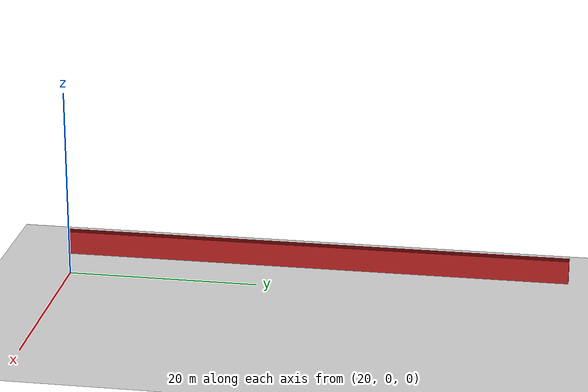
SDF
<sdf version="1.4">
 <world name="1_wall">
  <model name="ground_plane">
   <static>1</static>
   <link name="link">
    <collision name="collision">
     <geometry><plane><normal>0 0 1</normal><size>1000 1000</size></plane></geometry>
     <surface><friction><ode><mu>100</mu><mu2>50</mu2></ode></friction></surface>
    </collision>
    <visual name="visual">
     <cast_shadows>0</cast_shadows>
     <geometry><plane><normal>0 0 1</normal><size>10000 10000</size></plane></geometry>
     <material>
      <script><uri>file://media/materials/scripts/gazebo.material</uri><name>Gazebo/Grey</name></script>
     </material>
    </visual>
    <velocity_decay><linear>0</linear><angular>0</angular></velocity_decay>
   </link>
  </model>
  <model name="Wall_305">
   <static>1</static>
   <link name="Wall_305">
    <collision name="Wall_Collision_305">
     <geometry><box><size>53.65 0.05 2.5</size></box></geometry>
     <pose>0 0 1.25 0 -0 0</pose>
    </collision>
    <visual name="Wall_Visual_305">
     <pose>0 0 1.25 0 -0 0</pose>
     <geometry><box><size>53.65 0.05 2.5</size></box></geometry>
     <material>
      <script><uri>file://media/materials/scripts/gazebo.material</uri><name>Gazebo/Red</name></script>
     </material>
    </visual>
    <velocity_decay><linear>0</linear><angular>0</angular></velocity_decay>
    <pose>13.75 25.3 0 0 0 1.5707963267948966</pose>
   </link>
  </model>
  <model name="Wall_306">
   <static>1</static>
   <link name="Wall_306">
    <collision name="Wall_Collision_306">
     <geometry><box><size>53.65 0.05 2.5</size></box></geometry>
     <pose>0 0 1.25 0 -0 0</pose>
    </collision>
    <visual name="Wall_Visual_306">
     <pose>0 0 1.25 0 -0 0</pose>
     <geometry><box><size>53.65 0.05 2.5</size></box></geometry>
     <material>
      <script><uri>file://media/materials/scripts/gazebo.material</uri><name>Gazebo/Red</name></script>
     </material>
    </visual>
    <velocity_decay><linear>0</linear><angular>0</angular></velocity_decay>
    <pose>13.8 25.3 0 0 0 1.5707963267948966</pose>
   </link>
  </model>
  <model name="Wall_307">
   <static>1</static>
   <link name="Wall_307">
    <collision name="Wall_Collision_307">
     <geometry><box><size>53.65 0.05 2.5</size></box></geometry>
     <pose>0 0 1.25 0 -0 0</pose>
    </collision>
    <visual name="Wall_Visual_307">
     <pose>0 0 1.25 0 -0 0</pose>
     <geometry><box><size>53.65 0.05 2.5</size></box></geometry>
     <material>
      <script><uri>file://media/materials/scripts/gazebo.material</uri><name>Gazebo/Red</name></script>
     </material>
    </visual>
    <velocity_decay><linear>0</linear><angular>0</angular></velocity_decay>
    <pose>13.85 25.3 0 0 0 1.5707963267948966</pose>
   </link>
  </model>
  <model name="Wall_308">
   <static>1</static>
   <link name="Wall_308">
    <collision name="Wall_Collision_308">
     <geometry><box><size>53.65 0.05 2.5</size></box></geometry>
     <pose>0 0 1.25 0 -0 0</pose>
    </collision>
    <visual name="Wall_Visual_308">
     <pose>0 0 1.25 0 -0 0</pose>
     <geometry><box><size>53.65 0.05 2.5</size></box></geometry>
     <material>
      <script><uri>file://media/materials/scripts/gazebo.material</uri><name>Gazebo/Red</name></script>
     </material>
    </visual>
    <velocity_decay><linear>0</linear><angular>0</angular></velocity_decay>
    <pose>13.9 25.3 0 0 0 1.5707963267948966</pose>
   </link>
  </model>
  <model name="Wall_309">
   <static>1</static>
   <link name="Wall_309">
    <collision name="Wall_Collision_309">
     <geometry><box><size>53.65 0.05 2.5</size></box></geometry>
     <pose>0 0 1.25 0 -0 0</pose>
    </collision>
    <visual name="Wall_Visual_309">
     <pose>0 0 1.25 0 -0 0</pose>
     <geometry><box><size>53.65 0.05 2.5</size></box></geometry>
     <material>
      <script><uri>file://media/materials/scripts/gazebo.material</uri><name>Gazebo/Red</name></script>
     </material>
    </visual>
    <velocity_decay><linear>0</linear><angular>0</angular></velocity_decay>
    <pose>13.95 25.3 0 0 0 1.5707963267948966</pose>
   </link>
  </model>
  <model name="Wall_310">
   <static>1</static>
   <link name="Wall_310">
    <collision name="Wall_Collision_310">
     <geometry><box><size>53.65 0.05 2.5</size></box></geometry>
     <pose>0 0 1.25 0 -0 0</pose>
    </collision>
    <visual name="Wall_Visual_310">
     <pose>0 0 1.25 0 -0 0</pose>
     <geometry><box><size>53.65 0.05 2.5</size></box></geometry>
     <material>
      <script><uri>file://media/materials/scripts/gazebo.material</uri><name>Gazebo/Red</name></script>
     </material>
    </visual>
    <velocity_decay><linear>0</linear><angular>0</angular></velocity_decay>
    <pose>14.0 25.3 0 0 0 1.5707963267948966</pose>
   </link>
  </model>
  <model name="Wall_311">
   <static>1</static>
   <link name="Wall_311">
    <collision name="Wall_Collision_311">
     <geometry><box><size>53.65 0.05 2.5</size></box></geometry>
     <pose>0 0 1.25 0 -0 0</pose>
    </collision>
    <visual name="Wall_Visual_311">
     <pose>0 0 1.25 0 -0 0</pose>
     <geometry><box><size>53.65 0.05 2.5</size></box></geometry>
     <material>
      <script><uri>file://media/materials/scripts/gazebo.material</uri><name>Gazebo/Red</name></script>
     </material>
    </visual>
    <velocity_decay><linear>0</linear><angular>0</angular></velocity_decay>
    <pose>14.05 25.3 0 0 0 1.5707963267948966</pose>
   </link>
  </model>
  <model name="Wall_312">
   <static>1</static>
   <link name="Wall_312">
    <collision name="Wall_Collision_312">
     <geometry><box><size>53.65 0.05 2.5</size></box></geometry>
     <pose>0 0 1.25 0 -0 0</pose>
    </collision>
    <visual name="Wall_Visual_312">
     <pose>0 0 1.25 0 -0 0</pose>
     <geometry><box><size>53.65 0.05 2.5</size></box></geometry>
     <material>
      <script><uri>file://media/materials/scripts/gazebo.material</uri><name>Gazebo/Red</name></script>
     </material>
    </visual>
    <velocity_decay><linear>0</linear><angular>0</angular></velocity_decay>
    <pose>14.1 25.3 0 0 0 1.5707963267948966</pose>
   </link>
  </model>
  <model name="Wall_313">
   <static>1</static>
   <link name="Wall_313">
    <collision name="Wall_Collision_313">
     <geometry><box><size>53.65 0.05 2.5</size></box></geometry>
     <pose>0 0 1.25 0 -0 0</pose>
    </collision>
    <visual name="Wall_Visual_313">
     <pose>0 0 1.25 0 -0 0</pose>
     <geometry><box><size>53.65 0.05 2.5</size></box></geometry>
     <material>
      <script><uri>file://media/materials/scripts/gazebo.material</uri><name>Gazebo/Red</name></script>
     </material>
    </visual>
    <velocity_decay><linear>0</linear><angular>0</angular></velocity_decay>
    <pose>14.15 25.3 0 0 0 1.5707963267948966</pose>
   </link>
  </model>
  <model name="Wall_314">
   <static>1</static>
   <link name="Wall_314">
    <collision name="Wall_Collision_314">
     <geometry><box><size>53.65 0.05 2.5</size></box></geometry>
     <pose>0 0 1.25 0 -0 0</pose>
    </collision>
    <visual name="Wall_Visual_314">
     <pose>0 0 1.25 0 -0 0</pose>
     <geometry><box><size>53.65 0.05 2.5</size></box></geometry>
     <material>
      <script><uri>file://media/materials/scripts/gazebo.material</uri><name>Gazebo/Red</name></script>
     </material>
    </visual>
    <velocity_decay><linear>0</linear><angular>0</angular></velocity_decay>
    <pose>14.2 25.3 0 0 0 1.5707963267948966</pose>
   </link>
  </model>
  <model name="Wall_315">
   <static>1</static>
   <link name="Wall_315">
    <collision name="Wall_Collision_315">
     <geometry><box><size>53.65 0.05 2.5</size></box></geometry>
     <pose>0 0 1.25 0 -0 0</pose>
    </collision>
    <visual name="Wall_Visual_315">
     <pose>0 0 1.25 0 -0 0</pose>
     <geometry><box><size>53.65 0.05 2.5</size></box></geometry>
     <material>
      <script><uri>file://media/materials/scripts/gazebo.material</uri><name>Gazebo/Red</name></script>
     </material>
    </visual>
    <velocity_decay><linear>0</linear><angular>0</angular></velocity_decay>
    <pose>14.25 25.3 0 0 0 1.5707963267948966</pose>
   </link>
  </model>
  <model name="Wall_316">
   <static>1</static>
   <link name="Wall_316">
    <collision name="Wall_Collision_316">
     <geometry><box><size>53.65 0.05 2.5</size></box></geometry>
     <pose>0 0 1.25 0 -0 0</pose>
    </collision>
    <visual name="Wall_Visual_316">
     <pose>0 0 1.25 0 -0 0</pose>
     <geometry><box><size>53.65 0.05 2.5</size></box></geometry>
     <material>
      <script><uri>file://media/materials/scripts/gazebo.material</uri><name>Gazebo/Red</name></script>
     </material>
    </visual>
    <velocity_decay><linear>0</linear><angular>0</angular></velocity_decay>
    <pose>14.3 25.3 0 0 0 1.5707963267948966</pose>
   </link>
  </model>
  <model name="Wall_317">
   <static>1</static>
   <link name="Wall_317">
    <collision name="Wall_Collision_317">
     <geometry><box><size>53.65 0.05 2.5</size></box></geometry>
     <pose>0 0 1.25 0 -0 0</pose>
    </collision>
    <visual name="Wall_Visual_317">
     <pose>0 0 1.25 0 -0 0</pose>
     <geometry><box><size>53.65 0.05 2.5</size></box></geometry>
     <material>
      <script><uri>file://media/materials/scripts/gazebo.material</uri><name>Gazebo/Red</name></script>
     </material>
    </visual>
    <velocity_decay><linear>0</linear><angular>0</angular></velocity_decay>
    <pose>14.35 25.3 0 0 0 1.5707963267948966</pose>
   </link>
  </model>
  <model name="Wall_318">
   <static>1</static>
   <link name="Wall_318">
    <collision name="Wall_Collision_318">
     <geometry><box><size>53.65 0.05 2.5</size></box></geometry>
     <pose>0 0 1.25 0 -0 0</pose>
    </collision>
    <visual name="Wall_Visual_318">
     <pose>0 0 1.25 0 -0 0</pose>
     <geometry><box><size>53.65 0.05 2.5</size></box></geometry>
     <material>
      <script><uri>file://media/materials/scripts/gazebo.material</uri><name>Gazebo/Red</name></script>
     </material>
    </visual>
    <velocity_decay><linear>0</linear><angular>0</angular></velocity_decay>
    <pose>14.4 25.3 0 0 0 1.5707963267948966</pose>
   </link>
  </model>
  <model name="Wall_319">
   <static>1</static>
   <link name="Wall_319">
    <collision name="Wall_Collision_319">
     <geometry><box><size>53.65 0.05 2.5</size></box></geometry>
     <pose>0 0 1.25 0 -0 0</pose>
    </collision>
    <visual name="Wall_Visual_319">
     <pose>0 0 1.25 0 -0 0</pose>
     <geometry><box><size>53.65 0.05 2.5</size></box></geometry>
     <material>
      <script><uri>file://media/materials/scripts/gazebo.material</uri><name>Gazebo/Red</name></script>
     </material>
    </visual>
    <velocity_decay><linear>0</linear><angular>0</angular></velocity_decay>
    <pose>14.45 25.3 0 0 0 1.5707963267948966</pose>
   </link>
  </model>
  <model name="Wall_320">
   <static>1</static>
   <link name="Wall_320">
    <collision name="Wall_Collision_320">
     <geometry><box><size>53.65 0.05 2.5</size></box></geometry>
     <pose>0 0 1.25 0 -0 0</pose>
    </collision>
    <visual name="Wall_Visual_320">
     <pose>0 0 1.25 0 -0 0</pose>
     <geometry><box><size>53.65 0.05 2.5</size></box></geometry>
     <material>
      <script><uri>file://media/materials/scripts/gazebo.material</uri><name>Gazebo/Red</name></script>
     </material>
    </visual>
    <velocity_decay><linear>0</linear><angular>0</angular></velocity_decay>
    <pose>14.5 25.3 0 0 0 1.5707963267948966</pose>
   </link>
  </model>
  <model name="Wall_321">
   <static>1</static>
   <link name="Wall_321">
    <collision name="Wall_Collision_321">
     <geometry><box><size>53.65 0.05 2.5</size></box></geometry>
     <pose>0 0 1.25 0 -0 0</pose>
    </collision>
    <visual name="Wall_Visual_321">
     <pose>0 0 1.25 0 -0 0</pose>
     <geometry><box><size>53.65 0.05 2.5</size></box></geometry>
     <material>
      <script><uri>file://media/materials/scripts/gazebo.material</uri><name>Gazebo/Red</name></script>
     </material>
    </visual>
    <velocity_decay><linear>0</linear><angular>0</angular></velocity_decay>
    <pose>14.55 25.3 0 0 0 1.5707963267948966</pose>
   </link>
  </model>
  <model name="Wall_322">
   <static>1</static>
   <link name="Wall_322">
    <collision name="Wall_Collision_322">
     <geometry><box><size>53.65 0.05 2.5</size></box></geometry>
     <pose>0 0 1.25 0 -0 0</pose>
    </collision>
    <visual name="Wall_Visual_322">
     <pose>0 0 1.25 0 -0 0</pose>
     <geometry><box><size>53.65 0.05 2.5</size></box></geometry>
     <material>
      <script><uri>file://media/materials/scripts/gazebo.material</uri><name>Gazebo/Red</name></script>
     </material>
    </visual>
    <velocity_decay><linear>0</linear><angular>0</angular></velocity_decay>
    <pose>14.6 25.3 0 0 0 1.5707963267948966</pose>
   </link>
  </model>
 </world>
</sdf>
